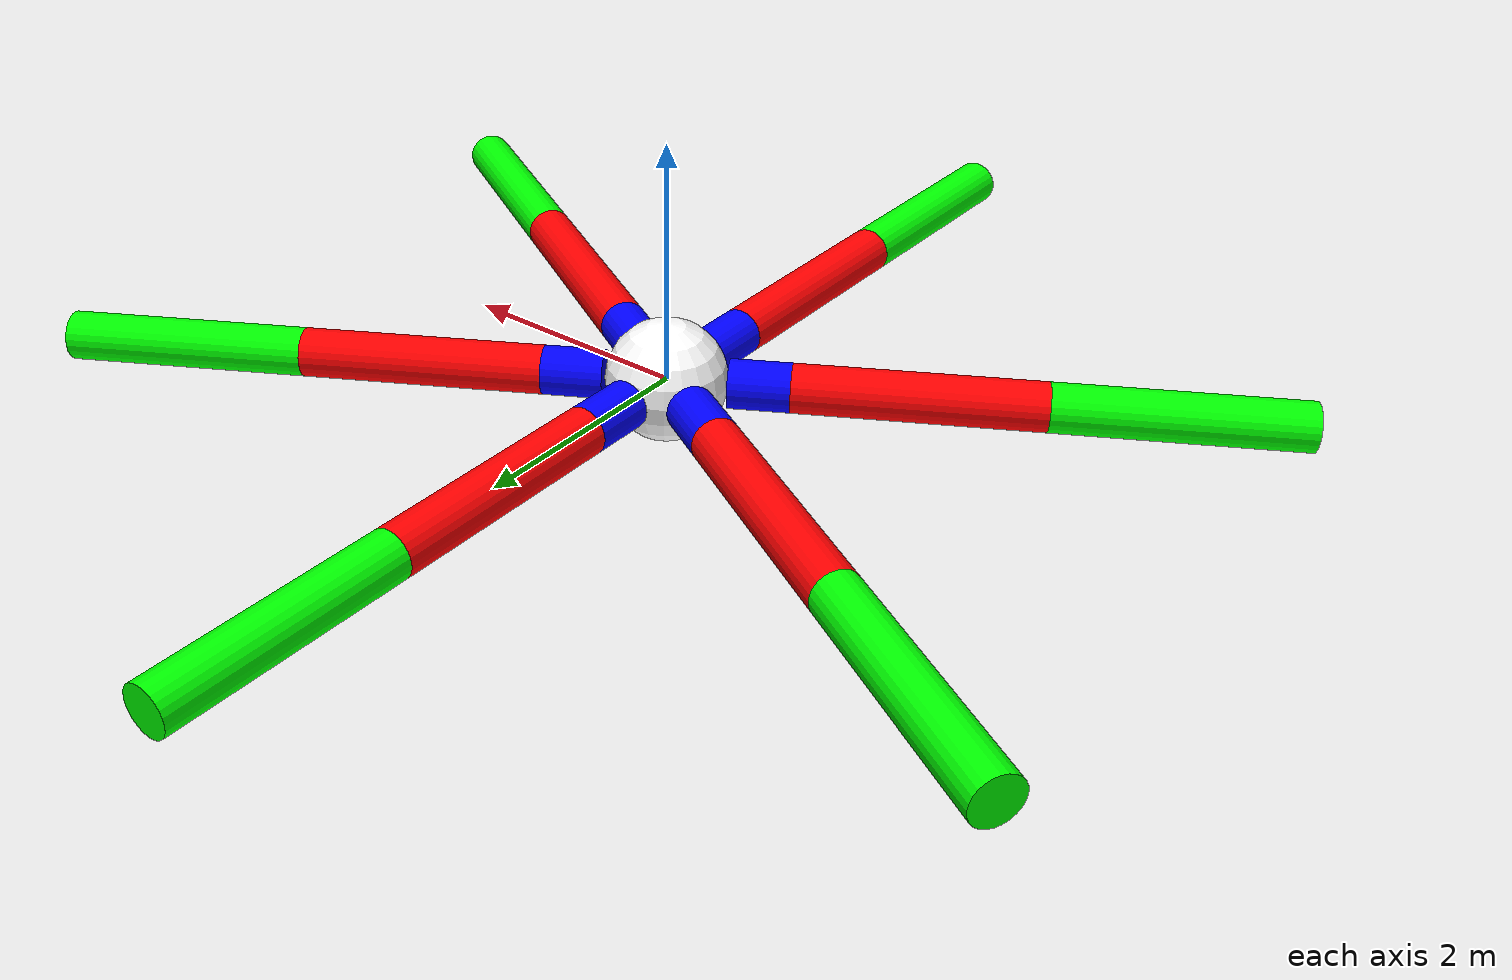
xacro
<?xml version="1.0"?>
<robot xmlns:xacro="http://www.ros.org/wiki/xacro" name="hexapod">
    <!-- Constants used throughout the model -->
    <xacro:property name="body_radius" value="0.5"/>
    <xacro:property name="leg_radius" value="0.2"/>
    <xacro:property name="segment_0_length" value="0.5"/>
    <xacro:property name="segment_1_length" value="2"/>
    <xacro:property name="segment_2_length" value="2"/>

    <!-- Some colors used throughout the model -->
    <material name="white">
        <color rgba="1 1 1 1"/>
    </material>

    <material name="red">
        <color rgba="1 0 0 1"/>
    </material>

    <material name="green">
        <color rgba="0 1 0 1"/>
    </material>

    <material name="blue">
        <color rgba="0 0 1 1"/>
    </material>

    <!-- The main body of the robot -->
    <link name="body">
        <visual>
            <geometry>
                <sphere radius="${body_radius}"/>
            </geometry>
            <material name="white"/>
        </visual>
        <collision>
            <geometry>
                <sphere radius="${body_radius}"/>
            </geometry>
        </collision>
    </link>

    <!-- Macro used to generate legs -->
    <xacro:macro name="leg" params="leg_id">
        <!-- First leg segment -->
        <link name="leg_${leg_id}_segment_0">
            <visual>
                <geometry>
                    <cylinder length="${segment_0_length}" radius="${leg_radius}"/>
                </geometry>
                <material name="blue"/>
                <origin xyz="0 0 ${segment_0_length/2}"/>
            </visual>
            <collision>
                <geometry>
                    <cylinder length="${segment_0_length}" radius="${leg_radius}"/>
                </geometry>
                <origin xyz="0 0 ${segment_0_length/2}"/>
            </collision>
        </link>

        <!-- Joint connecting body to first leg segment -->
        <joint name="leg_${leg_id}_body_to_segment_0" type="revolute">
            <parent link="body"/>
            <child link="leg_${leg_id}_segment_0"/>
            <axis xyz="1 0 0"/>
            <limit effort="1000.0" lower="-0.5" upper="0.5" velocity="0.5"/>
            <!-- Determines the position and orientation of the leg based on its ID -->
            <origin xyz="${body_radius*sin(leg_id*pi/3)} ${body_radius*cos(leg_id*pi/3)} 0" rpy="0 ${pi/2} ${pi/2-leg_id*pi/3}"/>
        </joint>

        <!-- Second leg segment -->
        <link name="leg_${leg_id}_segment_1">
            <visual>
                <geometry>
                    <cylinder length="${segment_1_length}" radius="${leg_radius}"/>
                </geometry>
                <material name="red"/>
                <origin xyz="0 0 ${segment_1_length/2}"/>
            </visual>
            <collision>
                <geometry>
                    <cylinder length="${segment_1_length}" radius="${leg_radius}"/>
                </geometry>
                <origin xyz="0 0 ${segment_1_length/2}"/>
            </collision>
        </link>

        <!-- Joint connecting first and second leg segments -->
        <joint name="leg_${leg_id}_segment_0_to_segment_1" type="revolute">
            <axis xyz="0 1 0"/>
            <parent link="leg_${leg_id}_segment_0"/>
            <child link="leg_${leg_id}_segment_1"/>
            <limit effort="1000.0" lower="-${2*pi/3}" upper="${2*pi/3}" velocity="0.5"/>
            <origin xyz="0 0 ${segment_0_length}"/>
        </joint>

        <!-- Third leg segment -->
        <link name="leg_${leg_id}_segment_2">
            <visual>
                <geometry>
                    <cylinder length="${segment_2_length}" radius="${leg_radius}"/>
                </geometry>
                <material name="green"/>
                <origin xyz="0 0 ${segment_2_length/2}"/>
            </visual>
            <collision>
                <geometry>
                    <cylinder length="${segment_2_length}" radius="${leg_radius}"/>
                </geometry>
                <origin xyz="0 0 ${segment_2_length/2}"/>
            </collision>
        </link>

        <!-- Joint connecting second and third leg segments -->
        <joint name="leg_${leg_id}_segment_1_to_segment_2" type="revolute">
            <axis xyz="0 1 0"/>
            <parent link="leg_${leg_id}_segment_1"/>
            <child link="leg_${leg_id}_segment_2"/>
            <limit effort="1000.0" lower="-${2*pi/3}" upper="${2*pi/3}" velocity="0.5"/>
            <origin xyz="0 0 ${segment_1_length}"/>
        </joint>

    </xacro:macro>

    <xacro:leg leg_id="0"/>
    <xacro:leg leg_id="1"/>
    <xacro:leg leg_id="2"/>
    <xacro:leg leg_id="3"/>
    <xacro:leg leg_id="4"/>
    <xacro:leg leg_id="5"/>
</robot>
